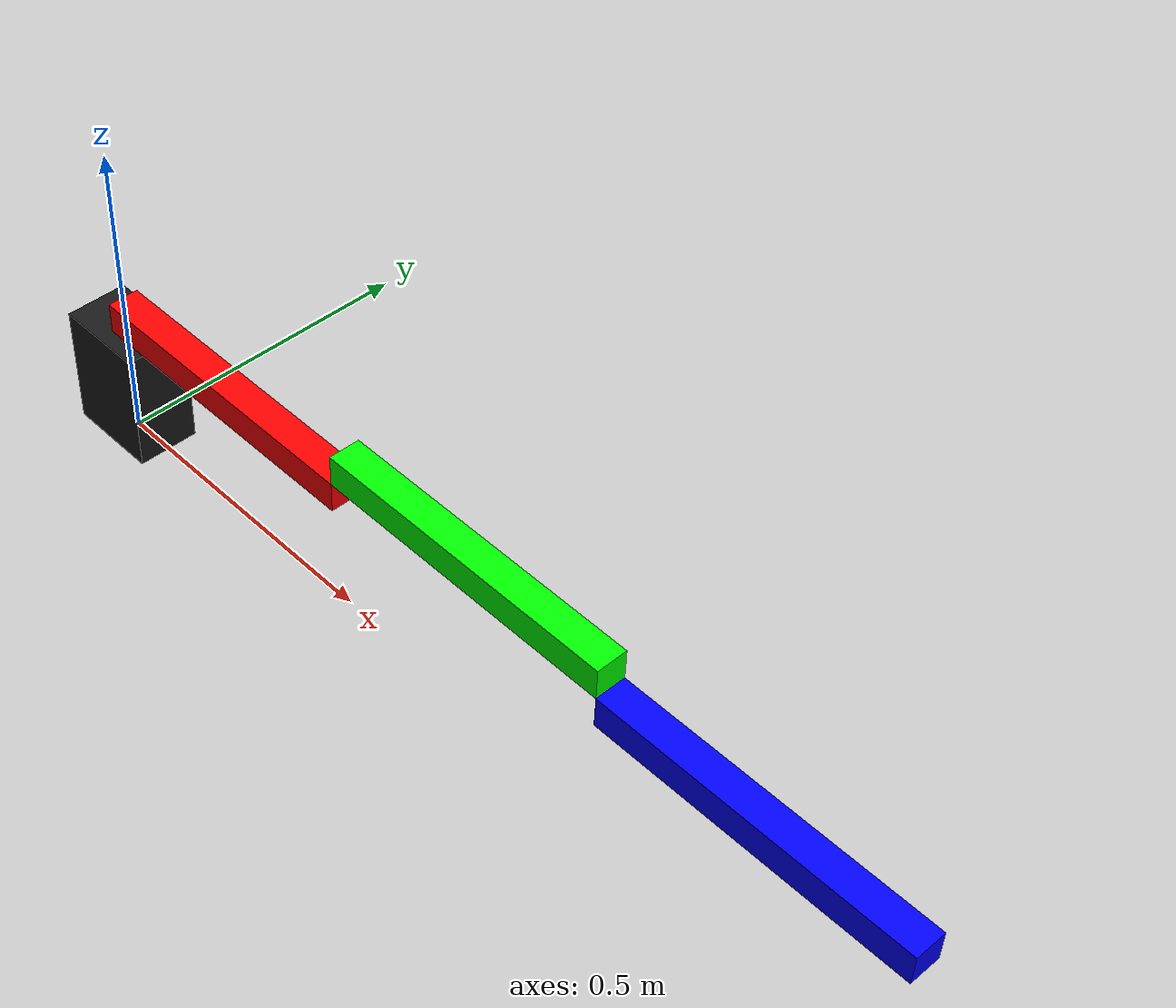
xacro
<?xml version="1.0" ?>
<robot name="robot_scara" xmlns:xacro="http://ros.org/wiki/xacro">

<!--Descripcion del robot scara-->

    <!--Creando anclaje para Gazebo-->

    <link name="world">
    </link>

    <joint name="world_joint" type="fixed">
        <parent link="world" />
        <child link="base_link" />
        <axis xyz="0 0 0" />
        <origin xyz="0.0 0.0 0.0" rpy="0 0 0" />
    </joint>

    <!--Fin anclaje-->

    <link name="base_link">
        <visual>
            <origin xyz="0.0 0.0 0.10" rpy="0.0 0.0 0.0" />
            <geometry>
                <box size="0.15 0.10 0.20" />
            </geometry>
            <material name="gray">
                <color rgba="0.1 0.1 0.1 1.0" />
            </material>
        </visual>

        <collision>
            <origin xyz="0.0 0.0 0.10" rpy="0.0 0.0 0.0" />
            <geometry>
                <box size="0.15 0.10 0.20" />
            </geometry>
        </collision>

        <inertial>
            <mass value="1.0" />
            <origin xyz="0.0 0.0 0.0" rpy="0.0 0.0 0.0" />
            <inertia ixx="1.0" ixy="0.0" ixz="0.0" iyy="1.0" iyz="0.0" izz="1.0" />
        </inertial>
    </link>

    <link name="link_1">
        <visual>
            <origin xyz="0.25 0.0 0.025" rpy="0.0 0.0 0.0" />
            <geometry>
                <box size="0.5 0.05 0.05" />
            </geometry>
            <material name="red">
                <color rgba="1.0 0.0 0.0 1.0" />
            </material>
        </visual>

        <collision>
            <origin xyz="0.25 0.0 0.025" rpy="0.0 0.0 0.0" />
            <geometry>
                <box size="0.5 0.05 0.05" />
            </geometry>
        </collision>

        <inertial>
            <mass value="1.0" />
            <origin xyz="0.0 0.0 0.0" rpy="0.0 0.0 0.0" />
            <inertia ixx="1.0" ixy="0.0" ixz="0.0" iyy="1.0" iyz="0.0" izz="1.0" />
        </inertial>
    </link>

    <joint name="link_1_joint" type="revolute">
        <parent link="base_link" />
        <child link="link_1" />
        <axis xyz="0 0 1" />
        <limit lower="-1.57" upper="1.57" velocity="1"
            effort="1000" />
        <origin xyz="0.0 0.0 0.2" rpy="0 0 0" />
    </joint>

    <link name="link_2">
        <visual>
            <origin xyz="0.25 0.0 0.025" rpy="0.0 0.0 0.0" />
            <geometry>
                <box size="0.5 0.05 0.05" />
            </geometry>
            <material name="green">
                <color rgba="0.0 1.0 0.0 1.0" />
            </material>
        </visual>

        <collision>
            <origin xyz="0.25 0.0 0.025" rpy="0.0 0.0 0.0" />
            <geometry>
                <box size="0.5 0.05 0.05" />
            </geometry>
        </collision>

        <inertial>
            <mass value="1.0" />
            <origin xyz="0.0 0.0 0.0" rpy="0.0 0.0 0.0" />
            <inertia ixx="1.0" ixy="0.0" ixz="0.0" iyy="1.0" iyz="0.0" izz="1.0" />
        </inertial>
    </link>

    <joint name="link_2_joint" type="revolute">
        <parent link="link_1" />
        <child link="link_2" />
        <axis xyz="0 0 1" />
        <limit lower="-1.57" upper="1.57" velocity="1"
            effort="1000" />
        <origin xyz="0.5 0.0 0.05" rpy="0 0 0" />
    </joint>

    <link name="link_3">
        <visual>
            <origin xyz="0.25 0.0 -0.025" rpy="0.0 0.0 0.0" />
            <geometry>
                <box size="0.5 0.05 0.05" />
            </geometry>
            <material name="blue">
                <color rgba="0.0 0.0 1.0 1.0" />
            </material>
        </visual>

        <collision>
            <origin xyz="0.25 0.0 -0.025" rpy="0.0 0.0 0.0" />
            <geometry>
                <box size="0.5 0.05 0.05" />
            </geometry>
        </collision>

        <inertial>
            <mass value="1.0" />
            <origin xyz="0.0 0.0 0.0" rpy="0.0 0.0 0.0" />
            <inertia ixx="1.0" ixy="0.0" ixz="0.0" iyy="1.0" iyz="0.0" izz="1.0" />
        </inertial>
    </link>

    <joint name="link_3_joint" type="revolute">
        <parent link="link_2" />
        <child link="link_3" />
        <axis xyz="0 0 1" />
        <limit lower="-1.57" upper="1.57" velocity="1"
            effort="1000" />
        <origin xyz="0.5 0.0 0.0" rpy="0 0 0" />
    </joint>

    <link name="P">
    </link>

    <joint name="link_P_joint" type="fixed">
        <parent link="link_3" />
        <child link="P" />
        <origin xyz="0.5 0.0 0.0" rpy="0 0 0" />
    </joint>

</robot>
